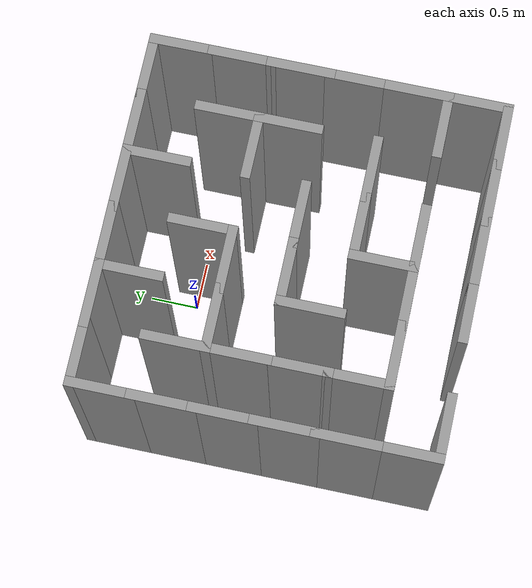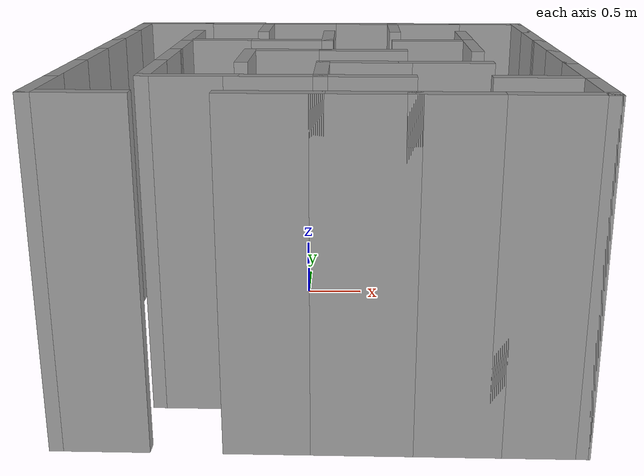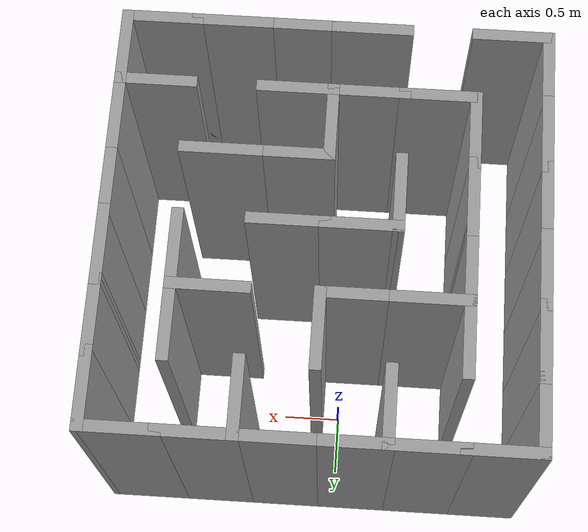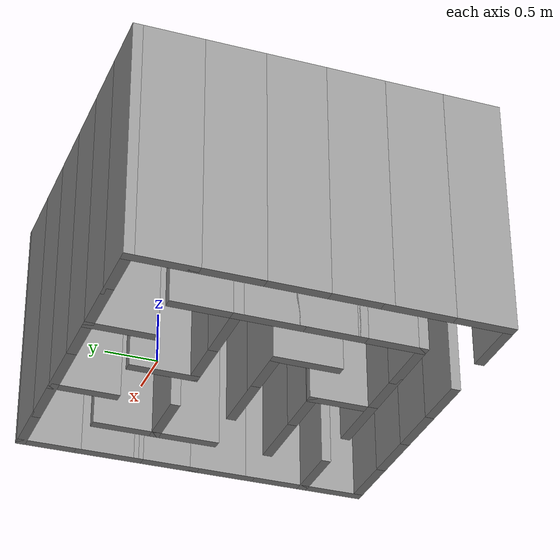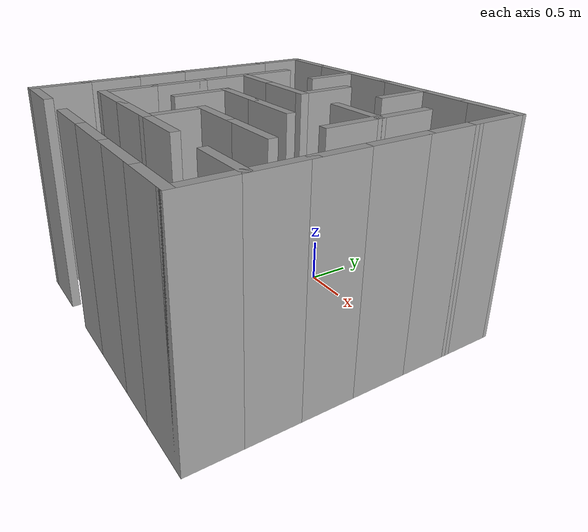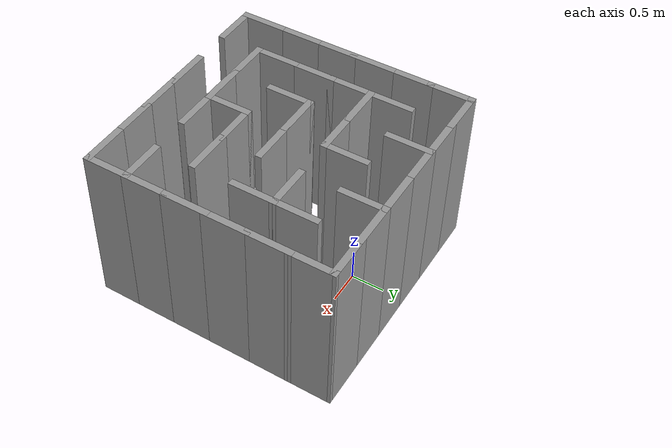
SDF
<?xml version='1.0'?>
<sdf version='1.7'>
  <model name='ros2_maze_07'>
    <pose>0.190542 -1.01996 0 0 -0 0</pose>
    <link name='Wall_100'>
      <collision name='Wall_100_Collision'>
        <geometry>
          <box>
            <size>0.7 0.1 2.5</size>
          </box>
        </geometry>
        <pose>0 0 1.25 0 -0 0</pose>
      </collision>
      <visual name='Wall_100_Visual'>
        <pose>0 0 1.25 0 -0 0</pose>
        <geometry>
          <box>
            <size>0.7 0.1 2.5</size>
          </box>
        </geometry>
        <material>
          <script>
            <uri>file://media/materials/scripts/gazebo.material</uri>
            <name>Gazebo/Grey</name>
          </script>
          <ambient>1 1 1 1</ambient>
        </material>
        <meta>
          <layer>0</layer>
        </meta>
      </visual>
      <pose>-1.20054 0.899958 0 0 -0 -1.5708</pose>
    </link>
    <link name='Wall_102'>
      <collision name='Wall_102_Collision'>
        <geometry>
          <box>
            <size>0.7 0.1 2.5</size>
          </box>
        </geometry>
        <pose>0 0 1.25 0 -0 0</pose>
      </collision>
      <visual name='Wall_102_Visual'>
        <pose>0 0 1.25 0 -0 0</pose>
        <geometry>
          <box>
            <size>0.7 0.1 2.5</size>
          </box>
        </geometry>
        <material>
          <script>
            <uri>file://media/materials/scripts/gazebo.material</uri>
            <name>Gazebo/Grey</name>
          </script>
          <ambient>1 1 1 1</ambient>
        </material>
        <meta>
          <layer>0</layer>
        </meta>
      </visual>
      <pose>-1.80054 0.299958 0 0 -0 -1.5708</pose>
    </link>
    <link name='Wall_104'>
      <collision name='Wall_104_Collision'>
        <geometry>
          <box>
            <size>0.7 0.1 2.5</size>
          </box>
        </geometry>
        <pose>0 0 1.25 0 -0 0</pose>
      </collision>
      <visual name='Wall_104_Visual'>
        <pose>0 0 1.25 0 -0 0</pose>
        <geometry>
          <box>
            <size>0.7 0.1 2.5</size>
          </box>
        </geometry>
        <material>
          <script>
            <uri>file://media/materials/scripts/gazebo.material</uri>
            <name>Gazebo/Grey</name>
          </script>
          <ambient>1 1 1 1</ambient>
        </material>
        <meta>
          <layer>0</layer>
        </meta>
      </visual>
      <pose>-1.20054 -0.300042 0 0 -0 -1.5708</pose>
    </link>
    <link name='Wall_106'>
      <collision name='Wall_106_Collision'>
        <geometry>
          <box>
            <size>0.7 0.1 2.5</size>
          </box>
        </geometry>
        <pose>0 0 1.25 0 -0 0</pose>
      </collision>
      <visual name='Wall_106_Visual'>
        <pose>0 0 1.25 0 -0 0</pose>
        <geometry>
          <box>
            <size>0.7 0.1 2.5</size>
          </box>
        </geometry>
        <material>
          <script>
            <uri>file://media/materials/scripts/gazebo.material</uri>
            <name>Gazebo/Grey</name>
          </script>
          <ambient>1 1 1 1</ambient>
        </material>
        <meta>
          <layer>0</layer>
        </meta>
      </visual>
      <pose>-1.80054 -0.900042 0 0 -0 -1.5708</pose>
    </link>
    <link name='Wall_109'>
      <collision name='Wall_109_Collision'>
        <geometry>
          <box>
            <size>0.7 0.1 2.5</size>
          </box>
        </geometry>
        <pose>0 0 1.25 0 -0 0</pose>
      </collision>
      <visual name='Wall_109_Visual'>
        <pose>0 0 1.25 0 -0 0</pose>
        <geometry>
          <box>
            <size>0.7 0.1 2.5</size>
          </box>
        </geometry>
        <material>
          <script>
            <uri>file://media/materials/scripts/gazebo.material</uri>
            <name>Gazebo/Grey</name>
          </script>
          <ambient>1 1 1 1</ambient>
        </material>
        <meta>
          <layer>0</layer>
        </meta>
      </visual>
      <pose>-1.50054 -1.80004 0 0 -0 3.14159</pose>
    </link>
    <link name='Wall_113'>
      <collision name='Wall_113_Collision'>
        <geometry>
          <box>
            <size>0.7 0.1 2.5</size>
          </box>
        </geometry>
        <pose>0 0 1.25 0 -0 0</pose>
      </collision>
      <visual name='Wall_113_Visual'>
        <pose>0 0 1.25 0 -0 0</pose>
        <geometry>
          <box>
            <size>0.7 0.1 2.5</size>
          </box>
        </geometry>
        <material>
          <script>
            <uri>file://media/materials/scripts/gazebo.material</uri>
            <name>Gazebo/Grey</name>
          </script>
          <ambient>1 1 1 1</ambient>
        </material>
        <meta>
          <layer>0</layer>
        </meta>
      </visual>
      <pose>-0.300542 -1.20004 0 0 -0 0</pose>
    </link>
    <link name='Wall_115'>
      <collision name='Wall_115_Collision'>
        <geometry>
          <box>
            <size>0.7 0.1 2.5</size>
          </box>
        </geometry>
        <pose>0 0 1.25 0 -0 0</pose>
      </collision>
      <visual name='Wall_115_Visual'>
        <pose>0 0 1.25 0 -0 0</pose>
        <geometry>
          <box>
            <size>0.7 0.1 2.5</size>
          </box>
        </geometry>
        <material>
          <script>
            <uri>file://media/materials/scripts/gazebo.material</uri>
            <name>Gazebo/Grey</name>
          </script>
          <ambient>1 1 1 1</ambient>
        </material>
        <meta>
          <layer>0</layer>
        </meta>
      </visual>
      <pose>0.299458 -1.80004 0 0 -0 0</pose>
    </link>
    <link name='Wall_119'>
      <collision name='Wall_119_Collision'>
        <geometry>
          <box>
            <size>0.7 0.1 2.5</size>
          </box>
        </geometry>
        <pose>0 0 1.25 0 -0 0</pose>
      </collision>
      <visual name='Wall_119_Visual'>
        <pose>0 0 1.25 0 -0 0</pose>
        <geometry>
          <box>
            <size>0.7 0.1 2.5</size>
          </box>
        </geometry>
        <material>
          <script>
            <uri>file://media/materials/scripts/gazebo.material</uri>
            <name>Gazebo/Grey</name>
          </script>
          <ambient>1 1 1 1</ambient>
        </material>
        <meta>
          <layer>0</layer>
        </meta>
      </visual>
      <pose>1.49946 -1.80004 0 0 -0 0</pose>
    </link>
    <link name='Wall_120'>
      <collision name='Wall_120_Collision'>
        <geometry>
          <box>
            <size>0.7 0.1 2.5</size>
          </box>
        </geometry>
        <pose>0 0 1.25 0 -0 0</pose>
      </collision>
      <visual name='Wall_120_Visual'>
        <pose>0 0 1.25 0 -0 0</pose>
        <geometry>
          <box>
            <size>0.7 0.1 2.5</size>
          </box>
        </geometry>
        <material>
          <script>
            <uri>file://media/materials/scripts/gazebo.material</uri>
            <name>Gazebo/Grey</name>
          </script>
          <ambient>1 1 1 1</ambient>
        </material>
        <meta>
          <layer>0</layer>
        </meta>
      </visual>
      <pose>1.79946 -1.50004 0 0 -0 1.5708</pose>
    </link>
    <link name='Wall_121'>
      <collision name='Wall_121_Collision'>
        <geometry>
          <box>
            <size>0.7 0.1 2.5</size>
          </box>
        </geometry>
        <pose>0 0 1.25 0 -0 0</pose>
      </collision>
      <visual name='Wall_121_Visual'>
        <pose>0 0 1.25 0 -0 0</pose>
        <geometry>
          <box>
            <size>0.7 0.1 2.5</size>
          </box>
        </geometry>
        <material>
          <script>
            <uri>file://media/materials/scripts/gazebo.material</uri>
            <name>Gazebo/Grey</name>
          </script>
          <ambient>1 1 1 1</ambient>
        </material>
        <meta>
          <layer>0</layer>
        </meta>
      </visual>
      <pose>1.49946 -1.20004 0 0 -0 -3.14159</pose>
    </link>
    <link name='Wall_124'>
      <collision name='Wall_124_Collision'>
        <geometry>
          <box>
            <size>0.7 0.1 2.5</size>
          </box>
        </geometry>
        <pose>0 0 1.25 0 -0 0</pose>
      </collision>
      <visual name='Wall_124_Visual'>
        <pose>0 0 1.25 0 -0 0</pose>
        <geometry>
          <box>
            <size>0.7 0.1 2.5</size>
          </box>
        </geometry>
        <material>
          <script>
            <uri>file://media/materials/scripts/gazebo.material</uri>
            <name>Gazebo/Grey</name>
          </script>
          <ambient>1 1 1 1</ambient>
        </material>
        <meta>
          <layer>0</layer>
        </meta>
      </visual>
      <pose>1.79946 -0.300042 0 0 -0 1.5708</pose>
    </link>
    <link name='Wall_126'>
      <collision name='Wall_126_Collision'>
        <geometry>
          <box>
            <size>0.698001 0.1 2.5</size>
          </box>
        </geometry>
        <pose>0 0 1.25 0 -0 0</pose>
      </collision>
      <visual name='Wall_126_Visual'>
        <pose>0 0 1.25 0 -0 0</pose>
        <geometry>
          <box>
            <size>0.698001 0.1 2.5</size>
          </box>
        </geometry>
        <material>
          <script>
            <uri>file://media/materials/scripts/gazebo.material</uri>
            <name>Gazebo/Grey</name>
          </script>
          <ambient>1 1 1 1</ambient>
        </material>
        <meta>
          <layer>0</layer>
        </meta>
      </visual>
      <pose>1.19996 0.298958 0 0 -0 1.56912</pose>
    </link>
    <link name='Wall_128'>
      <collision name='Wall_128_Collision'>
        <geometry>
          <box>
            <size>0.699001 0.1 2.5</size>
          </box>
        </geometry>
        <pose>0 0 1.25 0 -0 0</pose>
      </collision>
      <visual name='Wall_128_Visual'>
        <pose>0 0 1.25 0 -0 0</pose>
        <geometry>
          <box>
            <size>0.699001 0.1 2.5</size>
          </box>
        </geometry>
        <material>
          <script>
            <uri>file://media/materials/scripts/gazebo.material</uri>
            <name>Gazebo/Grey</name>
          </script>
          <ambient>1 1 1 1</ambient>
        </material>
        <meta>
          <layer>0</layer>
        </meta>
      </visual>
      <pose>1.79996 0.899458 0 0 -0 1.56913</pose>
    </link>
    <link name='Wall_131'>
      <collision name='Wall_131_Collision'>
        <geometry>
          <box>
            <size>0.7 0.1 2.5</size>
          </box>
        </geometry>
        <pose>0 0 1.25 0 -0 0</pose>
      </collision>
      <visual name='Wall_131_Visual'>
        <pose>0 0 1.25 0 -0 0</pose>
        <geometry>
          <box>
            <size>0.7 0.1 2.5</size>
          </box>
        </geometry>
        <material>
          <script>
            <uri>file://media/materials/scripts/gazebo.material</uri>
            <name>Gazebo/Grey</name>
          </script>
          <ambient>1 1 1 1</ambient>
        </material>
        <meta>
          <layer>0</layer>
        </meta>
      </visual>
      <pose>0.899458 1.79996 0 0 -0 3.14159</pose>
    </link>
    <link name='Wall_132'>
      <collision name='Wall_132_Collision'>
        <geometry>
          <box>
            <size>0.7 0.1 2.5</size>
          </box>
        </geometry>
        <pose>0 0 1.25 0 -0 0</pose>
      </collision>
      <visual name='Wall_132_Visual'>
        <pose>0 0 1.25 0 -0 0</pose>
        <geometry>
          <box>
            <size>0.7 0.1 2.5</size>
          </box>
        </geometry>
        <material>
          <script>
            <uri>file://media/materials/scripts/gazebo.material</uri>
            <name>Gazebo/Grey</name>
          </script>
          <ambient>1 1 1 1</ambient>
        </material>
        <meta>
          <layer>0</layer>
        </meta>
      </visual>
      <pose>0.599458 1.49996 0 0 -0 -1.5708</pose>
    </link>
    <link name='Wall_135'>
      <collision name='Wall_135_Collision'>
        <geometry>
          <box>
            <size>0.7 0.1 2.5</size>
          </box>
        </geometry>
        <pose>0 0 1.25 0 -0 0</pose>
      </collision>
      <visual name='Wall_135_Visual'>
        <pose>0 0 1.25 0 -0 0</pose>
        <geometry>
          <box>
            <size>0.7 0.1 2.5</size>
          </box>
        </geometry>
        <material>
          <script>
            <uri>file://media/materials/scripts/gazebo.material</uri>
            <name>Gazebo/Grey</name>
          </script>
          <ambient>1 1 1 1</ambient>
        </material>
        <meta>
          <layer>0</layer>
        </meta>
      </visual>
      <pose>-0.300542 1.79996 0 0 -0 3.14159</pose>
    </link>
    <link name='Wall_136'>
      <collision name='Wall_136_Collision'>
        <geometry>
          <box>
            <size>0.7 0.1 2.5</size>
          </box>
        </geometry>
        <pose>0 0 1.25 0 -0 0</pose>
      </collision>
      <visual name='Wall_136_Visual'>
        <pose>0 0 1.25 0 -0 0</pose>
        <geometry>
          <box>
            <size>0.7 0.1 2.5</size>
          </box>
        </geometry>
        <material>
          <script>
            <uri>file://media/materials/scripts/gazebo.material</uri>
            <name>Gazebo/Grey</name>
          </script>
          <ambient>1 1 1 1</ambient>
        </material>
        <meta>
          <layer>0</layer>
        </meta>
      </visual>
      <pose>-0.600542 1.49996 0 0 -0 -1.5708</pose>
    </link>
    <link name='Wall_138'>
      <collision name='Wall_138_Collision'>
        <geometry>
          <box>
            <size>0.7 0.1 2.5</size>
          </box>
        </geometry>
        <pose>0 0 1.25 0 -0 0</pose>
      </collision>
      <visual name='Wall_138_Visual'>
        <pose>0 0 1.25 0 -0 0</pose>
        <geometry>
          <box>
            <size>0.7 0.1 2.5</size>
          </box>
        </geometry>
        <material>
          <script>
            <uri>file://media/materials/scripts/gazebo.material</uri>
            <name>Gazebo/Grey</name>
          </script>
          <ambient>1 1 1 1</ambient>
        </material>
        <meta>
          <layer>0</layer>
        </meta>
      </visual>
      <pose>-0.000542 0.899958 0 0 -0 -1.5708</pose>
    </link>
    <link name='Wall_143'>
      <collision name='Wall_143_Collision'>
        <geometry>
          <box>
            <size>0.701003 0.1 2.5</size>
          </box>
        </geometry>
        <pose>0 0 1.25 0 -0 0</pose>
      </collision>
      <visual name='Wall_143_Visual'>
        <pose>0 0 1.25 0 -0 0</pose>
        <geometry>
          <box>
            <size>0.701003 0.1 2.5</size>
          </box>
        </geometry>
        <material>
          <script>
            <uri>file://media/materials/scripts/gazebo.material</uri>
            <name>Gazebo/Grey</name>
          </script>
          <ambient>1 1 1 1</ambient>
        </material>
        <meta>
          <layer>0</layer>
        </meta>
      </visual>
      <pose>0.899958 0.598958 0 0 -0 3.13827</pose>
    </link>
    <link name='Wall_147'>
      <collision name='Wall_147_Collision'>
        <geometry>
          <box>
            <size>0.7 0.1 2.5</size>
          </box>
        </geometry>
        <pose>0 0 1.25 0 -0 0</pose>
      </collision>
      <visual name='Wall_147_Visual'>
        <pose>0 0 1.25 0 -0 0</pose>
        <geometry>
          <box>
            <size>0.7 0.1 2.5</size>
          </box>
        </geometry>
        <material>
          <script>
            <uri>file://media/materials/scripts/gazebo.material</uri>
            <name>Gazebo/Grey</name>
          </script>
          <ambient>1 1 1 1</ambient>
        </material>
        <meta>
          <layer>0</layer>
        </meta>
      </visual>
      <pose>0.899458 -0.600042 0 0 -0 3.14159</pose>
    </link>
    <link name='Wall_149'>
      <collision name='Wall_149_Collision'>
        <geometry>
          <box>
            <size>0.7 0.1 2.5</size>
          </box>
        </geometry>
        <pose>0 0 1.25 0 -0 0</pose>
      </collision>
      <visual name='Wall_149_Visual'>
        <pose>0 0 1.25 0 -0 0</pose>
        <geometry>
          <box>
            <size>0.7 0.1 2.5</size>
          </box>
        </geometry>
        <material>
          <script>
            <uri>file://media/materials/scripts/gazebo.material</uri>
            <name>Gazebo/Grey</name>
          </script>
          <ambient>1 1 1 1</ambient>
        </material>
        <meta>
          <layer>0</layer>
        </meta>
      </visual>
      <pose>0.299458 -1.20004 0 0 -0 -3.14159</pose>
    </link>
    <link name='Wall_150'>
      <collision name='Wall_150_Collision'>
        <geometry>
          <box>
            <size>0.7 0.1 2.5</size>
          </box>
        </geometry>
        <pose>0 0 1.25 0 -0 0</pose>
      </collision>
      <visual name='Wall_150_Visual'>
        <pose>0 0 1.25 0 -0 0</pose>
        <geometry>
          <box>
            <size>0.7 0.1 2.5</size>
          </box>
        </geometry>
        <material>
          <script>
            <uri>file://media/materials/scripts/gazebo.material</uri>
            <name>Gazebo/Grey</name>
          </script>
          <ambient>1 1 1 1</ambient>
        </material>
        <meta>
          <layer>0</layer>
        </meta>
      </visual>
      <pose>-0.000542 -0.900042 0 0 -0 1.5708</pose>
    </link>
    <link name='Wall_153'>
      <collision name='Wall_153_Collision'>
        <geometry>
          <box>
            <size>0.7 0.1 2.5</size>
          </box>
        </geometry>
        <pose>0 0 1.25 0 -0 0</pose>
      </collision>
      <visual name='Wall_153_Visual'>
        <pose>0 0 1.25 0 -0 0</pose>
        <geometry>
          <box>
            <size>0.7 0.1 2.5</size>
          </box>
        </geometry>
        <material>
          <script>
            <uri>file://media/materials/scripts/gazebo.material</uri>
            <name>Gazebo/Grey</name>
          </script>
          <ambient>1 1 1 1</ambient>
        </material>
        <meta>
          <layer>0</layer>
        </meta>
      </visual>
      <pose>-0.900542 -1.20004 0 0 -0 -3.14159</pose>
    </link>
    <link name='Wall_154'>
      <collision name='Wall_154_Collision'>
        <geometry>
          <box>
            <size>0.7 0.1 2.5</size>
          </box>
        </geometry>
        <pose>0 0 1.25 0 -0 0</pose>
      </collision>
      <visual name='Wall_154_Visual'>
        <pose>0 0 1.25 0 -0 0</pose>
        <geometry>
          <box>
            <size>0.7 0.1 2.5</size>
          </box>
        </geometry>
        <material>
          <script>
            <uri>file://media/materials/scripts/gazebo.material</uri>
            <name>Gazebo/Grey</name>
          </script>
          <ambient>1 1 1 1</ambient>
        </material>
        <meta>
          <layer>0</layer>
        </meta>
      </visual>
      <pose>-1.20054 -0.900042 0 0 -0 1.5708</pose>
    </link>
    <link name='Wall_156'>
      <collision name='Wall_156_Collision'>
        <geometry>
          <box>
            <size>0.7 0.1 2.5</size>
          </box>
        </geometry>
        <pose>0 0 1.25 0 -0 0</pose>
      </collision>
      <visual name='Wall_156_Visual'>
        <pose>0 0 1.25 0 -0 0</pose>
        <geometry>
          <box>
            <size>0.7 0.1 2.5</size>
          </box>
        </geometry>
        <material>
          <script>
            <uri>file://media/materials/scripts/gazebo.material</uri>
            <name>Gazebo/Grey</name>
          </script>
          <ambient>1 1 1 1</ambient>
        </material>
        <meta>
          <layer>0</layer>
        </meta>
      </visual>
      <pose>-0.600542 -0.300042 0 0 -0 1.5708</pose>
    </link>
    <link name='Wall_158'>
      <collision name='Wall_158_Collision'>
        <geometry>
          <box>
            <size>0.7 0.1 2.5</size>
          </box>
        </geometry>
        <pose>0 0 1.25 0 -0 0</pose>
      </collision>
      <visual name='Wall_158_Visual'>
        <pose>0 0 1.25 0 -0 0</pose>
        <geometry>
          <box>
            <size>0.7 0.1 2.5</size>
          </box>
        </geometry>
        <material>
          <script>
            <uri>file://media/materials/scripts/gazebo.material</uri>
            <name>Gazebo/Grey</name>
          </script>
          <ambient>1 1 1 1</ambient>
        </material>
        <meta>
          <layer>0</layer>
        </meta>
      </visual>
      <pose>-1.20054 0.299958 0 0 -0 1.5708</pose>
    </link>
    <link name='Wall_159'>
      <collision name='Wall_159_Collision'>
        <geometry>
          <box>
            <size>0.7 0.1 2.5</size>
          </box>
        </geometry>
        <pose>0 0 1.25 0 -0 0</pose>
      </collision>
      <visual name='Wall_159_Visual'>
        <pose>0 0 1.25 0 -0 0</pose>
        <geometry>
          <box>
            <size>0.7 0.1 2.5</size>
          </box>
        </geometry>
        <material>
          <script>
            <uri>file://media/materials/scripts/gazebo.material</uri>
            <name>Gazebo/Grey</name>
          </script>
          <ambient>1 1 1 1</ambient>
        </material>
        <meta>
          <layer>0</layer>
        </meta>
      </visual>
      <pose>-0.900542 0.599958 0 0 -0 0</pose>
    </link>
    <link name='Wall_161'>
      <collision name='Wall_161_Collision'>
        <geometry>
          <box>
            <size>0.7 0.1 2.5</size>
          </box>
        </geometry>
        <pose>0 0 1.25 0 -0 0</pose>
      </collision>
      <visual name='Wall_161_Visual'>
        <pose>0 0 1.25 0 -0 0</pose>
        <geometry>
          <box>
            <size>0.7 0.1 2.5</size>
          </box>
        </geometry>
        <material>
          <script>
            <uri>file://media/materials/scripts/gazebo.material</uri>
            <name>Gazebo/Grey</name>
          </script>
          <ambient>1 1 1 1</ambient>
        </material>
        <meta>
          <layer>0</layer>
        </meta>
      </visual>
      <pose>-0.300542 -4.2e-05 0 0 -0 0</pose>
    </link>
    <link name='Wall_163'>
      <collision name='Wall_163_Collision'>
        <geometry>
          <box>
            <size>0.7 0.1 2.5</size>
          </box>
        </geometry>
        <pose>0 0 1.25 0 -0 0</pose>
      </collision>
      <visual name='Wall_163_Visual'>
        <pose>0 0 1.25 0 -0 0</pose>
        <geometry>
          <box>
            <size>0.7 0.1 2.5</size>
          </box>
        </geometry>
        <material>
          <script>
            <uri>file://media/materials/scripts/gazebo.material</uri>
            <name>Gazebo/Grey</name>
          </script>
          <ambient>1 1 1 1</ambient>
        </material>
        <meta>
          <layer>0</layer>
        </meta>
      </visual>
      <pose>0.299458 -0.600042 0 0 -0 0</pose>
    </link>
    <link name='Wall_165'>
      <collision name='Wall_165_Collision'>
        <geometry>
          <box>
            <size>0.7 0.1 2.5</size>
          </box>
        </geometry>
        <pose>0 0 1.25 0 -0 0</pose>
      </collision>
      <visual name='Wall_165_Visual'>
        <pose>0 0 1.25 0 -0 0</pose>
        <geometry>
          <box>
            <size>0.7 0.1 2.5</size>
          </box>
        </geometry>
        <material>
          <script>
            <uri>file://media/materials/scripts/gazebo.material</uri>
            <name>Gazebo/Grey</name>
          </script>
          <ambient>1 1 1 1</ambient>
        </material>
        <meta>
          <layer>0</layer>
        </meta>
      </visual>
      <pose>0.299458 -4.2e-05 0 0 -0 -3.14159</pose>
    </link>
    <link name='Wall_167'>
      <collision name='Wall_167_Collision'>
        <geometry>
          <box>
            <size>0.7 0.1 2.5</size>
          </box>
        </geometry>
        <pose>0 0 1.25 0 -0 0</pose>
      </collision>
      <visual name='Wall_167_Visual'>
        <pose>0 0 1.25 0 -0 0</pose>
        <geometry>
          <box>
            <size>0.7 0.1 2.5</size>
          </box>
        </geometry>
        <material>
          <script>
            <uri>file://media/materials/scripts/gazebo.material</uri>
            <name>Gazebo/Grey</name>
          </script>
          <ambient>1 1 1 1</ambient>
        </material>
        <meta>
          <layer>0</layer>
        </meta>
      </visual>
      <pose>-0.300542 0.599958 0 0 -0 -3.14159</pose>
    </link>
    <link name='Wall_171'>
      <collision name='Wall_171_Collision'>
        <geometry>
          <box>
            <size>0.7 0.1 2.5</size>
          </box>
        </geometry>
        <pose>0 0 1.25 0 -0 0</pose>
      </collision>
      <visual name='Wall_171_Visual'>
        <pose>0 0 1.25 0 -0 0</pose>
        <geometry>
          <box>
            <size>0.7 0.1 2.5</size>
          </box>
        </geometry>
        <material>
          <script>
            <uri>file://media/materials/scripts/gazebo.material</uri>
            <name>Gazebo/Grey</name>
          </script>
          <ambient>1 1 1 1</ambient>
        </material>
        <meta>
          <layer>0</layer>
        </meta>
      </visual>
      <pose>-1.50054 1.79996 0 0 -0 3.14159</pose>
    </link>
    <link name='Wall_173'>
      <collision name='Wall_173_Collision'>
        <geometry>
          <box>
            <size>0.7 0.1 2.5</size>
          </box>
        </geometry>
        <pose>0 0 1.25 0 -0 0</pose>
      </collision>
      <visual name='Wall_173_Visual'>
        <pose>0 0 1.25 0 -0 0</pose>
        <geometry>
          <box>
            <size>0.7 0.1 2.5</size>
          </box>
        </geometry>
        <material>
          <script>
            <uri>file://media/materials/scripts/gazebo.material</uri>
            <name>Gazebo/Grey</name>
          </script>
          <ambient>1 1 1 1</ambient>
        </material>
        <meta>
          <layer>0</layer>
        </meta>
      </visual>
      <pose>-1.80054 0.899958 0 0 -0 -1.5708</pose>
    </link>
    <link name='Wall_175'>
      <collision name='Wall_175_Collision'>
        <geometry>
          <box>
            <size>0.7 0.1 2.5</size>
          </box>
        </geometry>
        <pose>0 0 1.25 0 -0 0</pose>
      </collision>
      <visual name='Wall_175_Visual'>
        <pose>0 0 1.25 0 -0 0</pose>
        <geometry>
          <box>
            <size>0.7 0.1 2.5</size>
          </box>
        </geometry>
        <material>
          <script>
            <uri>file://media/materials/scripts/gazebo.material</uri>
            <name>Gazebo/Grey</name>
          </script>
          <ambient>1 1 1 1</ambient>
        </material>
        <meta>
          <layer>0</layer>
        </meta>
      </visual>
      <pose>-1.80054 -0.300042 0 0 -0 -1.5708</pose>
    </link>
    <link name='Wall_177'>
      <collision name='Wall_177_Collision'>
        <geometry>
          <box>
            <size>0.7 0.1 2.5</size>
          </box>
        </geometry>
        <pose>0 0 1.25 0 -0 0</pose>
      </collision>
      <visual name='Wall_177_Visual'>
        <pose>0 0 1.25 0 -0 0</pose>
        <geometry>
          <box>
            <size>0.7 0.1 2.5</size>
          </box>
        </geometry>
        <material>
          <script>
            <uri>file://media/materials/scripts/gazebo.material</uri>
            <name>Gazebo/Grey</name>
          </script>
          <ambient>1 1 1 1</ambient>
        </material>
        <meta>
          <layer>0</layer>
        </meta>
      </visual>
      <pose>-1.80054 -1.50004 0 0 -0 -1.5708</pose>
    </link>
    <link name='Wall_179'>
      <collision name='Wall_179_Collision'>
        <geometry>
          <box>
            <size>0.7 0.1 2.5</size>
          </box>
        </geometry>
        <pose>0 0 1.25 0 -0 0</pose>
      </collision>
      <visual name='Wall_179_Visual'>
        <pose>0 0 1.25 0 -0 0</pose>
        <geometry>
          <box>
            <size>0.7 0.1 2.5</size>
          </box>
        </geometry>
        <material>
          <script>
            <uri>file://media/materials/scripts/gazebo.material</uri>
            <name>Gazebo/Grey</name>
          </script>
          <ambient>1 1 1 1</ambient>
        </material>
        <meta>
          <layer>0</layer>
        </meta>
      </visual>
      <pose>-0.300542 -1.80004 0 0 -0 0</pose>
    </link>
    <link name='Wall_181'>
      <collision name='Wall_181_Collision'>
        <geometry>
          <box>
            <size>0.7 0.1 2.5</size>
          </box>
        </geometry>
        <pose>0 0 1.25 0 -0 0</pose>
      </collision>
      <visual name='Wall_181_Visual'>
        <pose>0 0 1.25 0 -0 0</pose>
        <geometry>
          <box>
            <size>0.7 0.1 2.5</size>
          </box>
        </geometry>
        <material>
          <script>
            <uri>file://media/materials/scripts/gazebo.material</uri>
            <name>Gazebo/Grey</name>
          </script>
          <ambient>1 1 1 1</ambient>
        </material>
        <meta>
          <layer>0</layer>
        </meta>
      </visual>
      <pose>0.899458 -1.80004 0 0 -0 0</pose>
    </link>
    <link name='Wall_183'>
      <collision name='Wall_183_Collision'>
        <geometry>
          <box>
            <size>0.7 0.1 2.5</size>
          </box>
        </geometry>
        <pose>0 0 1.25 0 -0 0</pose>
      </collision>
      <visual name='Wall_183_Visual'>
        <pose>0 0 1.25 0 -0 0</pose>
        <geometry>
          <box>
            <size>0.7 0.1 2.5</size>
          </box>
        </geometry>
        <material>
          <script>
            <uri>file://media/materials/scripts/gazebo.material</uri>
            <name>Gazebo/Grey</name>
          </script>
          <ambient>1 1 1 1</ambient>
        </material>
        <meta>
          <layer>0</layer>
        </meta>
      </visual>
      <pose>1.79946 -0.900042 0 0 -0 1.5708</pose>
    </link>
    <link name='Wall_185'>
      <collision name='Wall_185_Collision'>
        <geometry>
          <box>
            <size>0.7 0.1 2.5</size>
          </box>
        </geometry>
        <pose>0 0 1.25 0 -0 0</pose>
      </collision>
      <visual name='Wall_185_Visual'>
        <pose>0 0 1.25 0 -0 0</pose>
        <geometry>
          <box>
            <size>0.7 0.1 2.5</size>
          </box>
        </geometry>
        <material>
          <script>
            <uri>file://media/materials/scripts/gazebo.material</uri>
            <name>Gazebo/Grey</name>
          </script>
          <ambient>1 1 1 1</ambient>
        </material>
        <meta>
          <layer>0</layer>
        </meta>
      </visual>
      <pose>1.79946 0.299958 0 0 -0 1.5708</pose>
    </link>
    <link name='Wall_187'>
      <collision name='Wall_187_Collision'>
        <geometry>
          <box>
            <size>0.701001 0.1 2.5</size>
          </box>
        </geometry>
        <pose>0 0 1.25 0 -0 0</pose>
      </collision>
      <visual name='Wall_187_Visual'>
        <pose>0 0 1.25 0 -0 0</pose>
        <geometry>
          <box>
            <size>0.701001 0.1 2.5</size>
          </box>
        </geometry>
        <material>
          <script>
            <uri>file://media/materials/scripts/gazebo.material</uri>
            <name>Gazebo/Grey</name>
          </script>
          <ambient>1 1 1 1</ambient>
        </material>
        <meta>
          <layer>0</layer>
        </meta>
      </visual>
      <pose>1.79996 1.49946 0 0 -0 1.57246</pose>
    </link>
    <link name='Wall_188'>
      <collision name='Wall_188_Collision'>
        <geometry>
          <box>
            <size>0.7 0.1 2.5</size>
          </box>
        </geometry>
        <pose>0 0 1.25 0 -0 0</pose>
      </collision>
      <visual name='Wall_188_Visual'>
        <pose>0 0 1.25 0 -0 0</pose>
        <geometry>
          <box>
            <size>0.7 0.1 2.5</size>
          </box>
        </geometry>
        <material>
          <script>
            <uri>file://media/materials/scripts/gazebo.material</uri>
            <name>Gazebo/Grey</name>
          </script>
          <ambient>1 1 1 1</ambient>
        </material>
        <meta>
          <layer>0</layer>
        </meta>
      </visual>
      <pose>1.49946 1.79996 0 0 -0 3.14159</pose>
    </link>
    <link name='Wall_190'>
      <collision name='Wall_190_Collision'>
        <geometry>
          <box>
            <size>0.7 0.1 2.5</size>
          </box>
        </geometry>
        <pose>0 0 1.25 0 -0 0</pose>
      </collision>
      <visual name='Wall_190_Visual'>
        <pose>0 0 1.25 0 -0 0</pose>
        <geometry>
          <box>
            <size>0.7 0.1 2.5</size>
          </box>
        </geometry>
        <material>
          <script>
            <uri>file://media/materials/scripts/gazebo.material</uri>
            <name>Gazebo/Grey</name>
          </script>
          <ambient>1 1 1 1</ambient>
        </material>
        <meta>
          <layer>0</layer>
        </meta>
      </visual>
      <pose>-0.900542 1.79996 0 0 -0 0</pose>
    </link>
    <link name='Wall_192'>
      <collision name='Wall_192_Collision'>
        <geometry>
          <box>
            <size>0.7 0.1 2.5</size>
          </box>
        </geometry>
        <pose>0 0 1.25 0 -0 0</pose>
      </collision>
      <visual name='Wall_192_Visual'>
        <pose>0 0 1.25 0 -0 0</pose>
        <geometry>
          <box>
            <size>0.7 0.1 2.5</size>
          </box>
        </geometry>
        <material>
          <script>
            <uri>file://media/materials/scripts/gazebo.material</uri>
            <name>Gazebo/Grey</name>
          </script>
          <ambient>1 1 1 1</ambient>
        </material>
        <meta>
          <layer>0</layer>
        </meta>
      </visual>
      <pose>0.299458 1.79996 0 0 -0 0</pose>
    </link>
    <link name='Wall_196'>
      <collision name='Wall_196_Collision'>
        <geometry>
          <box>
            <size>0.699528 0.1 2.5</size>
          </box>
        </geometry>
        <pose>0 0 1.25 0 -0 0</pose>
      </collision>
      <visual name='Wall_196_Visual'>
        <pose>0 0 1.25 0 -0 0</pose>
        <geometry>
          <box>
            <size>0.699528 0.1 2.5</size>
          </box>
        </geometry>
        <material>
          <script>
            <uri>file://media/materials/scripts/gazebo.material</uri>
            <name>Gazebo/Grey</name>
          </script>
          <ambient>1 1 1 1</ambient>
        </material>
        <meta>
          <layer>0</layer>
        </meta>
      </visual>
      <pose>1.20046 0.897958 0 0 -0 1.5708</pose>
    </link>
    <link name='Wall_98'>
      <collision name='Wall_98_Collision'>
        <geometry>
          <box>
            <size>0.7 0.1 2.5</size>
          </box>
        </geometry>
        <pose>0 0 1.25 0 -0 0</pose>
      </collision>
      <visual name='Wall_98_Visual'>
        <pose>0 0 1.25 0 -0 0</pose>
        <geometry>
          <box>
            <size>0.7 0.1 2.5</size>
          </box>
        </geometry>
        <material>
          <script>
            <uri>file://media/materials/scripts/gazebo.material</uri>
            <name>Gazebo/Grey</name>
          </script>
          <ambient>1 1 1 1</ambient>
        </material>
        <meta>
          <layer>0</layer>
        </meta>
      </visual>
      <pose>-1.80054 1.49996 0 0 -0 -1.5708</pose>
    </link>
    <static>1</static>
  </model>
</sdf>
